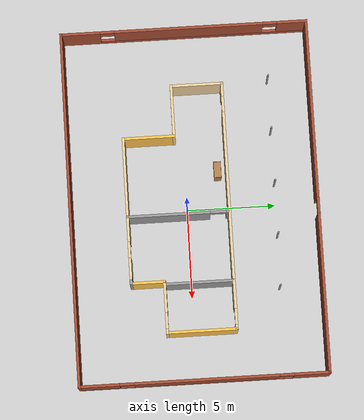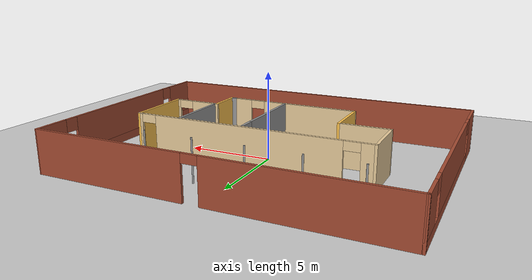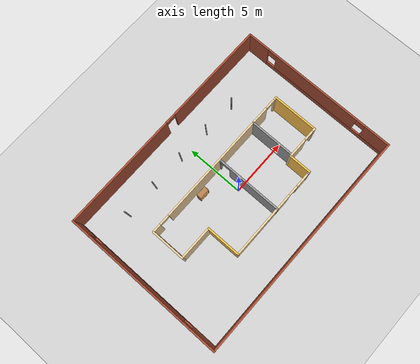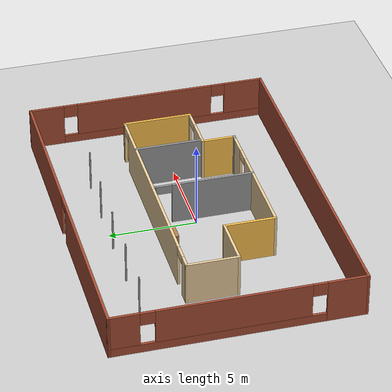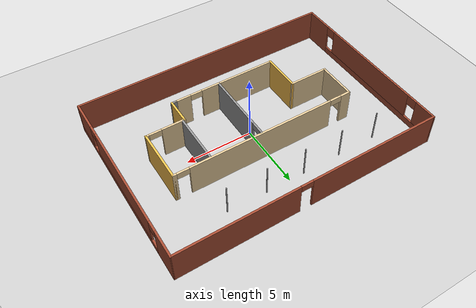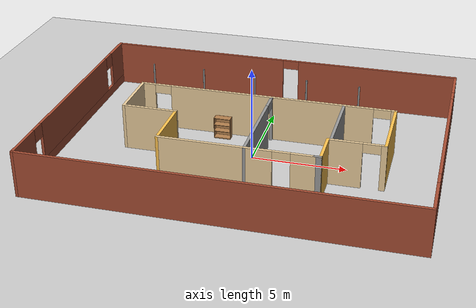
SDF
<sdf version="1.6">
 <world name="default">
  <plugin name="hello" filename="libhello.so"/>
  <light name="sun" type="directional">
   <pose>0 0 10 0 -0 0</pose>
   <diffuse>0.8 0.8 0.8 1</diffuse>
   <specular>0.1 0.1 0.1 1</specular>
   <attenuation>
    <range>1000</range>
    <constant>0.9</constant>
    <linear>0.01</linear>
    <quadratic>0.001</quadratic>
   </attenuation>
   <direction>-0.5 0.5 -1</direction>
  </light>
  <model name="ground_plane">
   <static>1</static>
   <link name="link">
    <collision name="collision">
     <geometry><plane><normal>0 0 1</normal><size>100 100</size></plane></geometry>
     <surface><friction><ode><mu>100</mu><mu2>50</mu2></ode></friction></surface>
    </collision>
    <visual name="visual">
     <cast_shadows>0</cast_shadows>
     <geometry><plane><normal>0 0 1</normal><size>100 100</size></plane></geometry>
     <material>
      <script><uri>file://media/materials/scripts/gazebo.material</uri><name>Gazebo/Grey</name></script>
     </material>
    </visual>
   </link>
  </model>
  <gravity>0 0 -9.8</gravity>
  <magnetic_field>6e-06 2.3e-05 -4.2e-05</magnetic_field>
  <atmosphere type="adiabatic"/>
  <physics name="default_physics" default="0" type="ode">
   <max_step_size>0.001</max_step_size>
   <real_time_factor>1</real_time_factor>
   <real_time_update_rate>1000</real_time_update_rate>
  </physics>
  <scene><ambient>0.4 0.4 0.4 1</ambient><background>0.7 0.7 0.7 1</background><shadows>1</shadows></scene>
  <spherical_coordinates>
   <surface_model>EARTH_WGS84</surface_model>
   <latitude_deg>0</latitude_deg>
   <longitude_deg>0</longitude_deg>
   <elevation>0</elevation>
   <heading_deg>0</heading_deg>
  </spherical_coordinates>
  <model name="p1building">
   <pose>-0.151426 0.38999 0 0 -0 0</pose>
   <link name="Wall_0">
    <pose>0.1485 -3.744 0 0 -0 3.14159</pose>
    <visual name="Wall_0_Visual_0">
     <pose>-3.3877 0 1.25 0 -0 0</pose>
     <geometry><box><size>1.22459 0.15 2.5</size></box></geometry>
     <material>
      <script><uri>file://media/materials/scripts/gazebo.material</uri><name>Gazebo/Grey</name></script>
      <ambient>0.921569 0.807843 0.615686 1</ambient>
     </material>
     <meta><layer>0</layer></meta>
    </visual>
    <collision name="Wall_0_Collision_0">
     <geometry><box><size>1.22459 0.15 2.5</size></box></geometry>
     <pose>-3.3877 0 1.25 0 -0 0</pose>
    </collision>
    <visual name="Wall_0_Visual_1">
     <pose>1.0623 0 1.25 0 -0 0</pose>
     <geometry><box><size>5.87541 0.15 2.5</size></box></geometry>
     <material>
      <script><uri>file://media/materials/scripts/gazebo.material</uri><name>Gazebo/Grey</name></script>
      <ambient>0.921569 0.807843 0.615686 1</ambient>
     </material>
     <meta><layer>0</layer></meta>
    </visual>
    <collision name="Wall_0_Collision_1">
     <geometry><box><size>5.87541 0.15 2.5</size></box></geometry>
     <pose>1.0623 0 1.25 0 -0 0</pose>
    </collision>
    <visual name="Wall_0_Visual_2">
     <pose>-2.32541 0 2.25 0 -0 0</pose>
     <geometry><box><size>0.9 0.15 0.5</size></box></geometry>
     <material>
      <script><uri>file://media/materials/scripts/gazebo.material</uri><name>Gazebo/Grey</name></script>
      <ambient>0.921569 0.807843 0.615686 1</ambient>
     </material>
     <meta><layer>0</layer></meta>
    </visual>
    <collision name="Wall_0_Collision_2">
     <geometry><box><size>0.9 0.15 0.5</size></box></geometry>
     <pose>-2.32541 0 2.25 0 -0 0</pose>
    </collision>
   </link>
   <link name="Wall_10">
    <pose>5.7985 -1.894 0 0 -0 3.14159</pose>
    <visual name="Wall_10_Visual_0">
     <pose>-1.35058 0 1.25 0 -0 0</pose>
     <geometry><box><size>0.298838 0.15 2.5</size></box></geometry>
     <material>
      <script><uri>file://media/materials/scripts/gazebo.material</uri><name>Gazebo/Grey</name></script>
      <ambient>0.921569 0.807843 0.615686 1</ambient>
     </material>
     <meta><layer>0</layer></meta>
    </visual>
    <collision name="Wall_10_Collision_0">
     <geometry><box><size>0.298838 0.15 2.5</size></box></geometry>
     <pose>-1.35058 0 1.25 0 -0 0</pose>
    </collision>
    <visual name="Wall_10_Visual_1">
     <pose>0.599419 0 1.25 0 -0 0</pose>
     <geometry><box><size>1.80116 0.15 2.5</size></box></geometry>
     <material>
      <script><uri>file://media/materials/scripts/gazebo.material</uri><name>Gazebo/Grey</name></script>
      <ambient>0.921569 0.807843 0.615686 1</ambient>
     </material>
     <meta><layer>0</layer></meta>
    </visual>
    <collision name="Wall_10_Collision_1">
     <geometry><box><size>1.80116 0.15 2.5</size></box></geometry>
     <pose>0.599419 0 1.25 0 -0 0</pose>
    </collision>
    <visual name="Wall_10_Visual_2">
     <pose>-0.751162 0 2.25 0 -0 0</pose>
     <geometry><box><size>0.9 0.15 0.5</size></box></geometry>
     <material>
      <script><uri>file://media/materials/scripts/gazebo.material</uri><name>Gazebo/Grey</name></script>
      <ambient>0.921569 0.807843 0.615686 1</ambient>
     </material>
     <meta><layer>0</layer></meta>
    </visual>
    <collision name="Wall_10_Collision_2">
     <geometry><box><size>0.9 0.15 0.5</size></box></geometry>
     <pose>-0.751162 0 2.25 0 -0 0</pose>
    </collision>
   </link>
   <link name="Wall_12">
    <collision name="Wall_12_Collision">
     <geometry><box><size>2 0.15 2.5</size></box></geometry>
     <pose>0 0 1.25 0 -0 0</pose>
    </collision>
    <visual name="Wall_12_Visual">
     <pose>0 0 1.25 0 -0 0</pose>
     <geometry><box><size>2 0.15 2.5</size></box></geometry>
     <material>
      <script><uri>file://media/materials/scripts/gazebo.material</uri><name>Gazebo/Grey</name></script>
      <ambient>1 0.764706 0.305882 1</ambient>
     </material>
     <meta><layer>0</layer></meta>
    </visual>
    <pose>4.3735 -2.819 0 0 0 -1.5708</pose>
   </link>
   <link name="Wall_13">
    <collision name="Wall_13_Collision">
     <geometry><box><size>0.45 0.15 2.5</size></box></geometry>
     <pose>0 0 1.25 0 -0 0</pose>
    </collision>
    <visual name="Wall_13_Visual">
     <pose>0 0 1.25 0 -0 0</pose>
     <geometry><box><size>0.45 0.15 2.5</size></box></geometry>
     <material>
      <script><uri>file://media/materials/scripts/gazebo.material</uri><name>Gazebo/Grey</name></script>
      <ambient>1 1 1 1</ambient>
     </material>
     <meta><layer>0</layer></meta>
    </visual>
    <pose>4.2235 -3.744 0 0 -0 3.14159</pose>
   </link>
   <link name="Wall_15">
    <collision name="Wall_15_Collision">
     <geometry><box><size>20 0.15 2.5</size></box></geometry>
     <pose>0 0 1.25 0 -0 0</pose>
    </collision>
    <visual name="Wall_15_Visual">
     <pose>0 0 1.25 0 -0 0</pose>
     <geometry><box><size>20 0.15 2.5</size></box></geometry>
     <material>
      <script><uri>file://media/materials/scripts/gazebo.material</uri><name>Gazebo/Bricks</name></script>
      <ambient>1 1 1 1</ambient>
     </material>
     <meta><layer>0</layer></meta>
    </visual>
    <pose>0.0025 -6.925 0 0 -0 3.14159</pose>
   </link>
   <link name="Wall_16">
    <pose>-9.925 0 0 0 -0 1.57116</pose>
    <visual name="Wall_16_Visual_0">
     <pose>-5.85842 0 1.25 0 -0 0</pose>
     <geometry><box><size>2.28316 0.15 2.5</size></box></geometry>
     <material>
      <script><uri>file://media/materials/scripts/gazebo.material</uri><name>Gazebo/Bricks</name></script>
      <ambient>1 1 1 1</ambient>
     </material>
     <meta><layer>0</layer></meta>
    </visual>
    <collision name="Wall_16_Collision_0">
     <geometry><box><size>2.28316 0.15 2.5</size></box></geometry>
     <pose>-5.85842 0 1.25 0 -0 0</pose>
    </collision>
    <visual name="Wall_16_Visual_1">
     <pose>1.14158 0 0.25 0 -0 0</pose>
     <geometry><box><size>11.7168 0.15 0.5</size></box></geometry>
     <material>
      <script><uri>file://media/materials/scripts/gazebo.material</uri><name>Gazebo/Bricks</name></script>
      <ambient>1 1 1 1</ambient>
     </material>
     <meta><layer>0</layer></meta>
    </visual>
    <collision name="Wall_16_Collision_1">
     <geometry><box><size>11.7168 0.15 0.5</size></box></geometry>
     <pose>1.14158 0 0.25 0 -0 0</pose>
    </collision>
    <visual name="Wall_16_Visual_2">
     <pose>0.280596 0 1.5 0 -0 0</pose>
     <geometry><box><size>8.39488 0.15 2</size></box></geometry>
     <material>
      <script><uri>file://media/materials/scripts/gazebo.material</uri><name>Gazebo/Bricks</name></script>
      <ambient>1 1 1 1</ambient>
     </material>
     <meta><layer>0</layer></meta>
    </visual>
    <collision name="Wall_16_Collision_2">
     <geometry><box><size>8.39488 0.15 2</size></box></geometry>
     <pose>0.280596 0 1.5 0 -0 0</pose>
    </collision>
    <visual name="Wall_16_Visual_3">
     <pose>6.13902 0 1.5 0 -0 0</pose>
     <geometry><box><size>1.72196 0.15 2</size></box></geometry>
     <material>
      <script><uri>file://media/materials/scripts/gazebo.material</uri><name>Gazebo/Bricks</name></script>
      <ambient>1 1 1 1</ambient>
     </material>
     <meta><layer>0</layer></meta>
    </visual>
    <collision name="Wall_16_Collision_3">
     <geometry><box><size>1.72196 0.15 2</size></box></geometry>
     <pose>6.13902 0 1.5 0 -0 0</pose>
    </collision>
    <visual name="Wall_16_Visual_4">
     <pose>-4.31684 0 2.125 0 -0 0</pose>
     <geometry><box><size>0.8 0.15 0.75</size></box></geometry>
     <material>
      <script><uri>file://media/materials/scripts/gazebo.material</uri><name>Gazebo/Bricks</name></script>
      <ambient>1 1 1 1</ambient>
     </material>
     <meta><layer>0</layer></meta>
    </visual>
    <collision name="Wall_16_Collision_4">
     <geometry><box><size>0.8 0.15 0.75</size></box></geometry>
     <pose>-4.31684 0 2.125 0 -0 0</pose>
    </collision>
    <visual name="Wall_16_Visual_5">
     <pose>4.87803 0 2.125 0 -0 0</pose>
     <geometry><box><size>0.8 0.15 0.75</size></box></geometry>
     <material>
      <script><uri>file://media/materials/scripts/gazebo.material</uri><name>Gazebo/Bricks</name></script>
      <ambient>1 1 1 1</ambient>
     </material>
     <meta><layer>0</layer></meta>
    </visual>
    <collision name="Wall_16_Collision_5">
     <geometry><box><size>0.8 0.15 0.75</size></box></geometry>
     <pose>4.87803 0 2.125 0 -0 0</pose>
    </collision>
   </link>
   <link name="Wall_18">
    <pose>-0.0025 6.925 0 0 -0 0</pose>
    <visual name="Wall_18_Visual_0">
     <pose>-4.92652 0 1.25 0 -0 0</pose>
     <geometry><box><size>10.147 0.15 2.5</size></box></geometry>
     <material>
      <script><uri>file://media/materials/scripts/gazebo.material</uri><name>Gazebo/Bricks</name></script>
      <ambient>1 1 1 1</ambient>
     </material>
     <meta><layer>0</layer></meta>
    </visual>
    <collision name="Wall_18_Collision_0">
     <geometry><box><size>10.147 0.15 2.5</size></box></geometry>
     <pose>-4.92652 0 1.25 0 -0 0</pose>
    </collision>
    <visual name="Wall_18_Visual_1">
     <pose>5.52348 0 1.25 0 -0 0</pose>
     <geometry><box><size>8.95305 0.15 2.5</size></box></geometry>
     <material>
      <script><uri>file://media/materials/scripts/gazebo.material</uri><name>Gazebo/Bricks</name></script>
      <ambient>1 1 1 1</ambient>
     </material>
     <meta><layer>0</layer></meta>
    </visual>
    <collision name="Wall_18_Collision_1">
     <geometry><box><size>8.95305 0.15 2.5</size></box></geometry>
     <pose>5.52348 0 1.25 0 -0 0</pose>
    </collision>
    <visual name="Wall_18_Visual_2">
     <pose>0.596952 0 2.25 0 -0 0</pose>
     <geometry><box><size>0.9 0.15 0.5</size></box></geometry>
     <material>
      <script><uri>file://media/materials/scripts/gazebo.material</uri><name>Gazebo/Bricks</name></script>
      <ambient>1 1 1 1</ambient>
     </material>
     <meta><layer>0</layer></meta>
    </visual>
    <collision name="Wall_18_Collision_2">
     <geometry><box><size>0.9 0.15 0.5</size></box></geometry>
     <pose>0.596952 0 2.25 0 -0 0</pose>
    </collision>
   </link>
   <link name="Wall_20">
    <pose>9.925 0 0 0 0 -1.57044</pose>
    <visual name="Wall_20_Visual_0">
     <pose>-5.98635 0 1.25 0 -0 0</pose>
     <geometry><box><size>2.02729 0.15 2.5</size></box></geometry>
     <material>
      <script><uri>file://media/materials/scripts/gazebo.material</uri><name>Gazebo/Bricks</name></script>
      <ambient>1 1 1 1</ambient>
     </material>
     <meta><layer>0</layer></meta>
    </visual>
    <collision name="Wall_20_Collision_0">
     <geometry><box><size>2.02729 0.15 2.5</size></box></geometry>
     <pose>-5.98635 0 1.25 0 -0 0</pose>
    </collision>
    <visual name="Wall_20_Visual_1">
     <pose>1.01365 0 0.25 0 -0 0</pose>
     <geometry><box><size>11.9727 0.15 0.5</size></box></geometry>
     <material>
      <script><uri>file://media/materials/scripts/gazebo.material</uri><name>Gazebo/Bricks</name></script>
      <ambient>1 1 1 1</ambient>
     </material>
     <meta><layer>0</layer></meta>
    </visual>
    <collision name="Wall_20_Collision_1">
     <geometry><box><size>11.9727 0.15 0.5</size></box></geometry>
     <pose>1.01365 0 0.25 0 -0 0</pose>
    </collision>
    <visual name="Wall_20_Visual_2">
     <pose>-0.142711 0 1.5 0 -0 0</pose>
     <geometry><box><size>8.05999 0.15 2</size></box></geometry>
     <material>
      <script><uri>file://media/materials/scripts/gazebo.material</uri><name>Gazebo/Bricks</name></script>
      <ambient>1 1 1 1</ambient>
     </material>
     <meta><layer>0</layer></meta>
    </visual>
    <collision name="Wall_20_Collision_2">
     <geometry><box><size>8.05999 0.15 2</size></box></geometry>
     <pose>-0.142711 0 1.5 0 -0 0</pose>
    </collision>
    <visual name="Wall_20_Visual_3">
     <pose>5.84364 0 1.5 0 -0 0</pose>
     <geometry><box><size>2.31271 0.15 2</size></box></geometry>
     <material>
      <script><uri>file://media/materials/scripts/gazebo.material</uri><name>Gazebo/Bricks</name></script>
      <ambient>1 1 1 1</ambient>
     </material>
     <meta><layer>0</layer></meta>
    </visual>
    <collision name="Wall_20_Collision_3">
     <geometry><box><size>2.31271 0.15 2</size></box></geometry>
     <pose>5.84364 0 1.5 0 -0 0</pose>
    </collision>
    <visual name="Wall_20_Visual_4">
     <pose>-4.57271 0 2.125 0 -0 0</pose>
     <geometry><box><size>0.8 0.15 0.75</size></box></geometry>
     <material>
      <script><uri>file://media/materials/scripts/gazebo.material</uri><name>Gazebo/Bricks</name></script>
      <ambient>1 1 1 1</ambient>
     </material>
     <meta><layer>0</layer></meta>
    </visual>
    <collision name="Wall_20_Collision_4">
     <geometry><box><size>0.8 0.15 0.75</size></box></geometry>
     <pose>-4.57271 0 2.125 0 -0 0</pose>
    </collision>
    <visual name="Wall_20_Visual_5">
     <pose>4.28728 0 2.125 0 -0 0</pose>
     <geometry><box><size>0.8 0.15 0.75</size></box></geometry>
     <material>
      <script><uri>file://media/materials/scripts/gazebo.material</uri><name>Gazebo/Bricks</name></script>
      <ambient>1 1 1 1</ambient>
     </material>
     <meta><layer>0</layer></meta>
    </visual>
    <collision name="Wall_20_Collision_5">
     <geometry><box><size>0.8 0.15 0.75</size></box></geometry>
     <pose>4.28728 0 2.125 0 -0 0</pose>
    </collision>
   </link>
   <link name="Wall_22">
    <collision name="Wall_22_Collision">
     <geometry><box><size>3.85 0.15 2.5</size></box></geometry>
     <pose>0 0 1.25 0 -0 0</pose>
    </collision>
    <visual name="Wall_22_Visual">
     <pose>0 0 1.25 0 -0 0</pose>
     <geometry><box><size>3.85 0.15 2.5</size></box></geometry>
     <material>
      <script><uri>file://media/materials/scripts/gazebo.material</uri><name>Gazebo/Grey</name></script>
      <ambient>1 1 1 1</ambient>
     </material>
     <meta><layer>0</layer></meta>
    </visual>
    <pose>4.5285 0.067 0 0 0 -1.5708</pose>
   </link>
   <link name="Wall_26">
    <pose>0.644611 -0.949596 0 0 0 -1.5708</pose>
    <visual name="Wall_26_Visual_0">
     <pose>-2.79939 0 1.25 0 -0 0</pose>
     <geometry><box><size>0.151226 0.15 2.5</size></box></geometry>
     <material>
      <script><uri>file://media/materials/scripts/gazebo.material</uri><name>Gazebo/Grey</name></script>
      <ambient>1 1 1 1</ambient>
     </material>
     <meta><layer>0</layer></meta>
    </visual>
    <collision name="Wall_26_Collision_0">
     <geometry><box><size>0.151226 0.15 2.5</size></box></geometry>
     <pose>-2.79939 0 1.25 0 -0 0</pose>
    </collision>
    <visual name="Wall_26_Visual_1">
     <pose>0.525613 0 1.25 0 -0 0</pose>
     <geometry><box><size>4.69877 0.15 2.5</size></box></geometry>
     <material>
      <script><uri>file://media/materials/scripts/gazebo.material</uri><name>Gazebo/Grey</name></script>
      <ambient>1 1 1 1</ambient>
     </material>
     <meta><layer>0</layer></meta>
    </visual>
    <collision name="Wall_26_Collision_1">
     <geometry><box><size>4.69877 0.15 2.5</size></box></geometry>
     <pose>0.525613 0 1.25 0 -0 0</pose>
    </collision>
    <visual name="Wall_26_Visual_2">
     <pose>-2.27377 0 2.25 0 -0 0</pose>
     <geometry><box><size>0.9 0.15 0.5</size></box></geometry>
     <material>
      <script><uri>file://media/materials/scripts/gazebo.material</uri><name>Gazebo/Grey</name></script>
      <ambient>1 1 1 1</ambient>
     </material>
     <meta><layer>0</layer></meta>
    </visual>
    <collision name="Wall_26_Collision_2">
     <geometry><box><size>0.9 0.15 0.5</size></box></geometry>
     <pose>-2.27377 0 2.25 0 -0 0</pose>
    </collision>
   </link>
   <link name="Wall_3">
    <collision name="Wall_3_Collision">
     <geometry><box><size>3 0.15 2.5</size></box></geometry>
     <pose>0 0 1.25 0 -0 0</pose>
    </collision>
    <visual name="Wall_3_Visual">
     <pose>0 0 1.25 0 -0 0</pose>
     <geometry><box><size>3 0.15 2.5</size></box></geometry>
     <material>
      <script><uri>file://media/materials/scripts/gazebo.material</uri><name>Gazebo/Grey</name></script>
      <ambient>1 0.764706 0.305882 1</ambient>
     </material>
     <meta><layer>0</layer></meta>
    </visual>
    <pose>-3.7765 -2.319 0 0 -0 1.5708</pose>
   </link>
   <link name="Wall_4">
    <collision name="Wall_4_Collision">
     <geometry><box><size>3 0.15 2.5</size></box></geometry>
     <pose>0 0 1.25 0 -0 0</pose>
    </collision>
    <visual name="Wall_4_Visual">
     <pose>0 0 1.25 0 -0 0</pose>
     <geometry><box><size>3 0.15 2.5</size></box></geometry>
     <material>
      <script><uri>file://media/materials/scripts/gazebo.material</uri><name>Gazebo/Grey</name></script>
      <ambient>0.921569 0.807843 0.615686 1</ambient>
     </material>
     <meta><layer>0</layer></meta>
    </visual>
    <pose>-5.2015 -0.894 0 0 -0 3.14159</pose>
   </link>
   <link name="Wall_5">
    <collision name="Wall_5_Collision">
     <geometry><box><size>3 0.15 2.5</size></box></geometry>
     <pose>0 0 1.25 0 -0 0</pose>
    </collision>
    <visual name="Wall_5_Visual">
     <pose>0 0 1.25 0 -0 0</pose>
     <geometry><box><size>3 0.15 2.5</size></box></geometry>
     <material>
      <script><uri>file://media/materials/scripts/gazebo.material</uri><name>Gazebo/Grey</name></script>
      <ambient>0.921569 0.807843 0.615686 1</ambient>
     </material>
     <meta><layer>0</layer></meta>
    </visual>
    <pose>-6.6265 0.531 0 0 -0 1.5708</pose>
   </link>
   <link name="Wall_7">
    <pose>0.2985 1.956 0 0 -0 0</pose>
    <visual name="Wall_7_Visual_0">
     <pose>-6.59491 0 1.25 0 -0 0</pose>
     <geometry><box><size>0.810185 0.15 2.5</size></box></geometry>
     <material>
      <script><uri>file://media/materials/scripts/gazebo.material</uri><name>Gazebo/Grey</name></script>
      <ambient>0.921569 0.807843 0.615686 1</ambient>
     </material>
     <meta><layer>0</layer></meta>
    </visual>
    <collision name="Wall_7_Collision_0">
     <geometry><box><size>0.810185 0.15 2.5</size></box></geometry>
     <pose>-6.59491 0 1.25 0 -0 0</pose>
    </collision>
    <visual name="Wall_7_Visual_1">
     <pose>0.246824 0 1.25 0 -0 0</pose>
     <geometry><box><size>11.0733 0.15 2.5</size></box></geometry>
     <material>
      <script><uri>file://media/materials/scripts/gazebo.material</uri><name>Gazebo/Grey</name></script>
      <ambient>0.921569 0.807843 0.615686 1</ambient>
     </material>
     <meta><layer>0</layer></meta>
    </visual>
    <collision name="Wall_7_Collision_1">
     <geometry><box><size>11.0733 0.15 2.5</size></box></geometry>
     <pose>0.246824 0 1.25 0 -0 0</pose>
    </collision>
    <visual name="Wall_7_Visual_2">
     <pose>6.84173 0 1.25 0 -0 0</pose>
     <geometry><box><size>0.316536 0.15 2.5</size></box></geometry>
     <material>
      <script><uri>file://media/materials/scripts/gazebo.material</uri><name>Gazebo/Grey</name></script>
      <ambient>0.921569 0.807843 0.615686 1</ambient>
     </material>
     <meta><layer>0</layer></meta>
    </visual>
    <collision name="Wall_7_Collision_2">
     <geometry><box><size>0.316536 0.15 2.5</size></box></geometry>
     <pose>6.84173 0 1.25 0 -0 0</pose>
    </collision>
    <visual name="Wall_7_Visual_3">
     <pose>-5.73982 0 2.25 0 -0 0</pose>
     <geometry><box><size>0.9 0.15 0.5</size></box></geometry>
     <material>
      <script><uri>file://media/materials/scripts/gazebo.material</uri><name>Gazebo/Grey</name></script>
      <ambient>0.921569 0.807843 0.615686 1</ambient>
     </material>
     <meta><layer>0</layer></meta>
    </visual>
    <collision name="Wall_7_Collision_3">
     <geometry><box><size>0.9 0.15 0.5</size></box></geometry>
     <pose>-5.73982 0 2.25 0 -0 0</pose>
    </collision>
    <visual name="Wall_7_Visual_4">
     <pose>6.23346 0 2.25 0 -0 0</pose>
     <geometry><box><size>0.9 0.15 0.5</size></box></geometry>
     <material>
      <script><uri>file://media/materials/scripts/gazebo.material</uri><name>Gazebo/Grey</name></script>
      <ambient>0.921569 0.807843 0.615686 1</ambient>
     </material>
     <meta><layer>0</layer></meta>
    </visual>
    <collision name="Wall_7_Collision_4">
     <geometry><box><size>0.9 0.15 0.5</size></box></geometry>
     <pose>6.23346 0 2.25 0 -0 0</pose>
    </collision>
   </link>
   <link name="Wall_9">
    <collision name="Wall_9_Collision">
     <geometry><box><size>4 0.15 2.5</size></box></geometry>
     <pose>0 0 1.25 0 -0 0</pose>
    </collision>
    <visual name="Wall_9_Visual">
     <pose>0 0 1.25 0 -0 0</pose>
     <geometry><box><size>4 0.15 2.5</size></box></geometry>
     <material>
      <script><uri>file://media/materials/scripts/gazebo.material</uri><name>Gazebo/Grey</name></script>
      <ambient>1 0.764706 0.305882 1</ambient>
     </material>
     <meta><layer>0</layer></meta>
    </visual>
    <pose>7.2235 0.031 0 0 0 -1.5708</pose>
   </link>
   <static>1</static>
  </model>
  <audio><device>default</device></audio>
  <model name="unit_cylinder_clone_2_clone_clone">
   <pose>-7.09351 4.97945 1.22098 0 5e-06 -0.000789</pose>
   <link name="link">
    <inertial>
     <mass>1</mass>
     <inertia><ixx>0.145833</ixx><ixy>0</ixy><ixz>0</ixz><iyy>0.145833</iyy><iyz>0</iyz><izz>0.125</izz></inertia>
    </inertial>
    <collision name="collision">
     <geometry><cylinder><radius>0.0486883</radius><length>2.44196</length></cylinder></geometry>
    </collision>
    <visual name="visual">
     <geometry><cylinder><radius>0.0486883</radius><length>2.44196</length></cylinder></geometry>
     <material>
      <script><name>Gazebo/Grey</name><uri>file://media/materials/scripts/gazebo.material</uri></script>
     </material>
    </visual>
   </link>
  </model>
  <model name="unit_cylinder_clone_2_clone_clone_0">
   <pose>-4.11072 4.98613 1.22097 0 7e-06 -0.001001</pose>
   <link name="link">
    <inertial>
     <mass>1</mass>
     <inertia><ixx>0.145833</ixx><ixy>0</ixy><ixz>0</ixz><iyy>0.145833</iyy><iyz>0</iyz><izz>0.125</izz></inertia>
    </inertial>
    <collision name="collision">
     <geometry><cylinder><radius>0.0486883</radius><length>2.44196</length></cylinder></geometry>
    </collision>
    <visual name="visual">
     <geometry><cylinder><radius>0.0486883</radius><length>2.44196</length></cylinder></geometry>
     <material>
      <script><name>Gazebo/Grey</name><uri>file://media/materials/scripts/gazebo.material</uri></script>
     </material>
    </visual>
   </link>
  </model>
  <model name="unit_cylinder_clone_2_clone_clone_1">
   <pose>-1.12333 5.00358 1.22098 3e-06 -1e-06 -0.000916</pose>
   <link name="link">
    <inertial>
     <mass>1</mass>
     <inertia><ixx>0.145833</ixx><ixy>0</ixy><ixz>0</ixz><iyy>0.145833</iyy><iyz>0</iyz><izz>0.125</izz></inertia>
    </inertial>
    <collision name="collision">
     <geometry><cylinder><radius>0.0486883</radius><length>2.44196</length></cylinder></geometry>
    </collision>
    <visual name="visual">
     <geometry><cylinder><radius>0.0486883</radius><length>2.44196</length></cylinder></geometry>
     <material>
      <script><name>Gazebo/Grey</name><uri>file://media/materials/scripts/gazebo.material</uri></script>
     </material>
    </visual>
   </link>
  </model>
  <model name="unit_cylinder_clone_2_clone_clone_2">
   <pose>1.83431 4.99168 1.22097 2e-06 -5e-06 -0.000915</pose>
   <link name="link">
    <inertial>
     <mass>1</mass>
     <inertia><ixx>0.145833</ixx><ixy>0</ixy><ixz>0</ixz><iyy>0.145833</iyy><iyz>0</iyz><izz>0.125</izz></inertia>
    </inertial>
    <collision name="collision">
     <geometry><cylinder><radius>0.0486883</radius><length>2.44196</length></cylinder></geometry>
    </collision>
    <visual name="visual">
     <geometry><cylinder><radius>0.0486883</radius><length>2.44196</length></cylinder></geometry>
     <material>
      <script><name>Gazebo/Grey</name><uri>file://media/materials/scripts/gazebo.material</uri></script>
     </material>
    </visual>
   </link>
  </model>
  <model name="unit_cylinder_clone_2_clone_clone_3">
   <pose>4.77859 4.92696 1.22098 -1e-06 -6e-06 -0.000465</pose>
   <link name="link">
    <inertial>
     <mass>1</mass>
     <inertia><ixx>0.145833</ixx><ixy>0</ixy><ixz>0</ixz><iyy>0.145833</iyy><iyz>0</iyz><izz>0.125</izz></inertia>
    </inertial>
    <collision name="collision">
     <geometry><cylinder><radius>0.0486883</radius><length>2.44196</length></cylinder></geometry>
    </collision>
    <visual name="visual">
     <geometry><cylinder><radius>0.0486883</radius><length>2.44196</length></cylinder></geometry>
     <material>
      <script><name>Gazebo/Grey</name><uri>file://media/materials/scripts/gazebo.material</uri></script>
     </material>
    </visual>
   </link>
  </model>
  <model name="bookshelf">
   <static>1</static>
   <link name="link">
    <inertial><mass>1</mass></inertial>
    <collision name="back">
     <pose>0 0.005 0.6 0 -0 0</pose>
     <geometry><box><size>0.9 0.01 1.2</size></box></geometry>
    </collision>
    <visual name="visual1">
     <pose>0 0.005 0.6 0 -0 0</pose>
     <geometry><box><size>0.9 0.01 1.2</size></box></geometry>
     <material>
      <script><uri>file://media/materials/scripts/gazebo.material</uri><name>Gazebo/Wood</name></script>
     </material>
    </visual>
    <collision name="left_side">
     <pose>0.45 -0.195 0.6 0 -0 0</pose>
     <geometry><box><size>0.02 0.4 1.2</size></box></geometry>
    </collision>
    <visual name="visual2">
     <pose>0.45 -0.195 0.6 0 -0 0</pose>
     <geometry><box><size>0.02 0.4 1.2</size></box></geometry>
     <material>
      <script><uri>file://media/materials/scripts/gazebo.material</uri><name>Gazebo/Wood</name></script>
     </material>
    </visual>
    <collision name="right_side">
     <pose>-0.45 -0.195 0.6 0 -0 0</pose>
     <geometry><box><size>0.02 0.4 1.2</size></box></geometry>
    </collision>
    <visual name="visual3">
     <pose>-0.45 -0.195 0.6 0 -0 0</pose>
     <geometry><box><size>0.02 0.4 1.2</size></box></geometry>
     <material>
      <script><uri>file://media/materials/scripts/gazebo.material</uri><name>Gazebo/Wood</name></script>
     </material>
    </visual>
    <collision name="bottom">
     <pose>0 -0.195 0.03 0 -0 0</pose>
     <geometry><box><size>0.88 0.4 0.06</size></box></geometry>
    </collision>
    <visual name="visual4">
     <pose>0 -0.195 0.03 0 -0 0</pose>
     <geometry><box><size>0.88 0.4 0.06</size></box></geometry>
     <material>
      <script><uri>file://media/materials/scripts/gazebo.material</uri><name>Gazebo/Wood</name></script>
     </material>
    </visual>
    <collision name="top">
     <pose>0 -0.195 1.19 0 -0 0</pose>
     <geometry><box><size>0.88 0.4 0.02</size></box></geometry>
    </collision>
    <visual name="visual5">
     <pose>0 -0.195 1.19 0 -0 0</pose>
     <geometry><box><size>0.88 0.4 0.02</size></box></geometry>
     <material>
      <script><uri>file://media/materials/scripts/gazebo.material</uri><name>Gazebo/Wood</name></script>
     </material>
    </visual>
    <collision name="low_shelf">
     <pose>0 -0.195 0.43 0 -0 0</pose>
     <geometry><box><size>0.88 0.4 0.02</size></box></geometry>
    </collision>
    <visual name="visual6">
     <pose>0 -0.195 0.43 0 -0 0</pose>
     <geometry><box><size>0.88 0.4 0.02</size></box></geometry>
     <material>
      <script><uri>file://media/materials/scripts/gazebo.material</uri><name>Gazebo/Wood</name></script>
     </material>
    </visual>
    <collision name="high_shelf">
     <pose>0 -0.195 0.8 0 -0 0</pose>
     <geometry><box><size>0.88 0.4 0.02</size></box></geometry>
    </collision>
    <visual name="visual7">
     <pose>0 -0.195 0.8 0 -0 0</pose>
     <geometry><box><size>0.88 0.4 0.02</size></box></geometry>
     <material>
      <script><uri>file://media/materials/scripts/gazebo.material</uri><name>Gazebo/Wood</name></script>
     </material>
    </visual>
   </link>
   <pose>-2.0875 2.03064 0 0 -0 0</pose>
  </model>
 </world>
</sdf>
